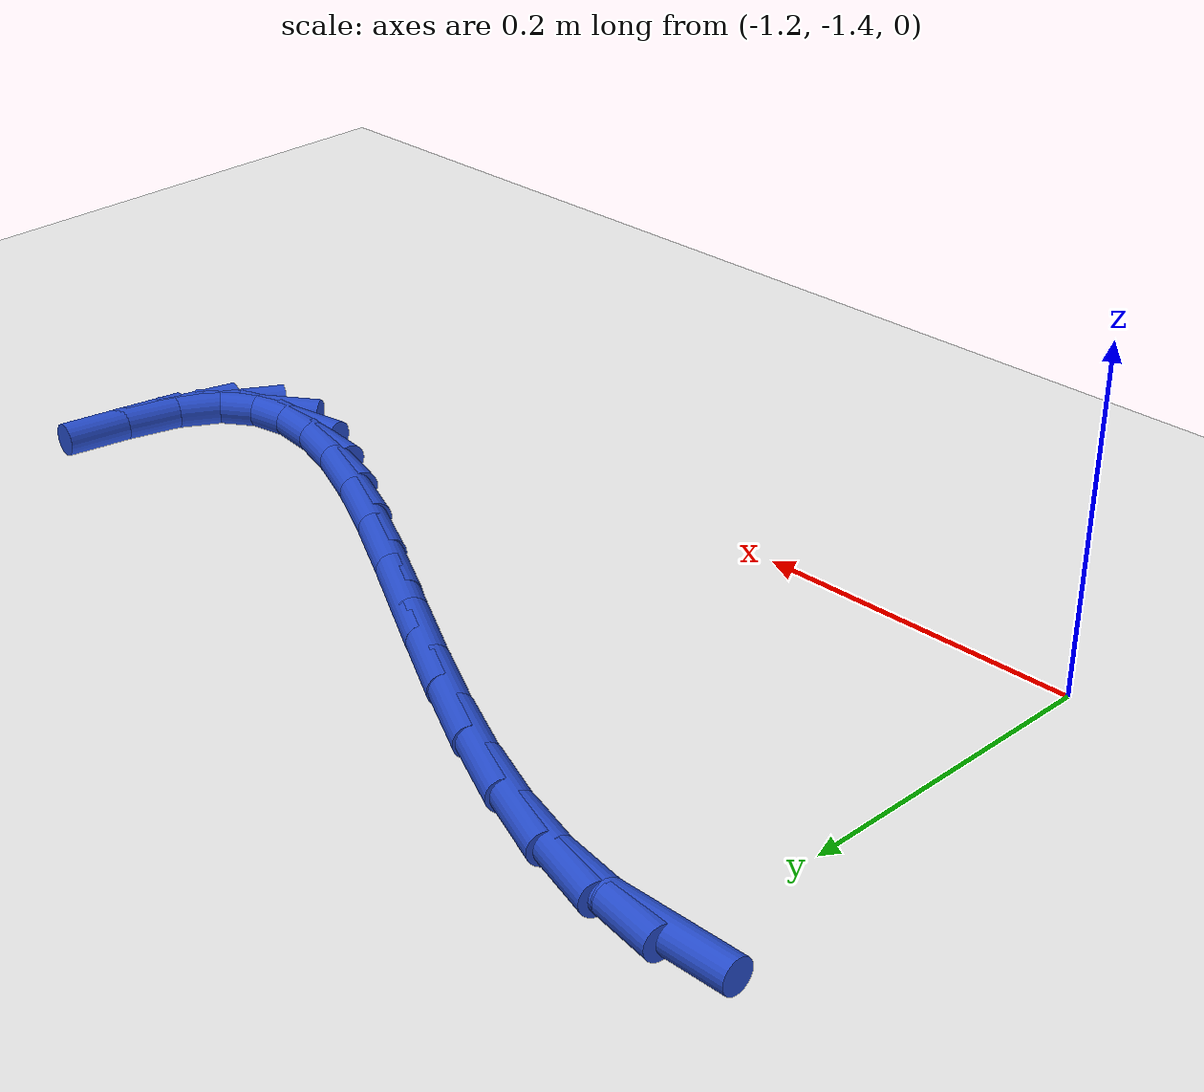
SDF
<sdf version="1.6">
 <world name="default">
  <model name="ground_plane">
   <static>1</static>
   <link name="link">
    <collision name="collision">
     <geometry><plane><normal>0 0 1</normal><size>100 100</size></plane></geometry>
     <surface><friction><ode><mu>100</mu><mu2>50</mu2></ode></friction></surface>
    </collision>
    <visual name="visual">
     <cast_shadows>0</cast_shadows>
     <geometry><plane><normal>0 0 1</normal><size>100 100</size></plane></geometry>
     <material>
      <script><uri>file://media/materials/scripts/gazebo.material</uri><name>Gazebo/WhiteGlow</name></script>
     </material>
    </visual>
   </link>
  </model>
  <model name="line">
   <link name="link_166">
    <pose>-1.2010693783709268 -1.0969151744405807 0.01 0 1.57 -0.009490670696101336</pose>
    <collision name="collision">
     <geometry><cylinder><radius>0.01</radius><length>0.08</length></cylinder></geometry>
    </collision>
    <visual name="visual">
     <material>
      <script><name>Gazebo/Blue</name><uri>file://media/materials/scripts/gazebo.material</uri></script>
     </material>
     <geometry><cylinder><radius>0.01</radius><length>0.08</length></cylinder></geometry>
    </visual>
   </link>
   <link name="link_167">
    <pose>-1.1627790071372486 -1.0972785866560455 0.01 0 1.57 -0.18726349912469764</pose>
    <collision name="collision">
     <geometry><cylinder><radius>0.01</radius><length>0.08</length></cylinder></geometry>
    </collision>
    <visual name="visual">
     <material>
      <script><name>Gazebo/Blue</name><uri>file://media/materials/scripts/gazebo.material</uri></script>
     </material>
     <geometry><cylinder><radius>0.01</radius><length>0.08</length></cylinder></geometry>
    </visual>
   </link>
   <link name="link_168">
    <pose>-1.1222038332906543 -1.1049669169723528 0.01 0 1.57 -0.31391302983705965</pose>
    <collision name="collision">
     <geometry><cylinder><radius>0.01</radius><length>0.08</length></cylinder></geometry>
    </collision>
    <visual name="visual">
     <material>
      <script><name>Gazebo/Blue</name><uri>file://media/materials/scripts/gazebo.material</uri></script>
     </material>
     <geometry><cylinder><radius>0.01</radius><length>0.08</length></cylinder></geometry>
    </visual>
   </link>
   <link name="link_169">
    <pose>-1.07990172873863 -1.118700188897642 0.01 0 1.57 -0.4023185592246144</pose>
    <collision name="collision">
     <geometry><cylinder><radius>0.01</radius><length>0.08</length></cylinder></geometry>
    </collision>
    <visual name="visual">
     <material>
      <script><name>Gazebo/Blue</name><uri>file://media/materials/scripts/gazebo.material</uri></script>
     </material>
     <geometry><cylinder><radius>0.01</radius><length>0.08</length></cylinder></geometry>
    </visual>
   </link>
   <link name="link_170">
    <pose>-1.036430565388667 -1.1371984259400514 0.01 0 1.57 -0.46259539797552635</pose>
    <collision name="collision">
     <geometry><cylinder><radius>0.01</radius><length>0.08</length></cylinder></geometry>
    </collision>
    <visual name="visual">
     <material>
      <script><name>Gazebo/Blue</name><uri>file://media/materials/scripts/gazebo.material</uri></script>
     </material>
     <geometry><cylinder><radius>0.01</radius><length>0.08</length></cylinder></geometry>
    </visual>
   </link>
   <link name="link_171">
    <pose>-0.9923482151482521 -1.15918165160772 0.01 0 1.57 -0.5013393944980971</pose>
    <collision name="collision">
     <geometry><cylinder><radius>0.01</radius><length>0.08</length></cylinder></geometry>
    </collision>
    <visual name="visual">
     <material>
      <script><name>Gazebo/Blue</name><uri>file://media/materials/scripts/gazebo.material</uri></script>
     </material>
     <geometry><cylinder><radius>0.01</radius><length>0.08</length></cylinder></geometry>
    </visual>
   </link>
   <link name="link_172">
    <pose>-0.9482125499248737 -1.1833698894087863 0.01 0 1.57 -0.5222714354342147</pose>
    <collision name="collision">
     <geometry><cylinder><radius>0.01</radius><length>0.08</length></cylinder></geometry>
    </collision>
    <visual name="visual">
     <material>
      <script><name>Gazebo/Blue</name><uri>file://media/materials/scripts/gazebo.material</uri></script>
     </material>
     <geometry><cylinder><radius>0.01</radius><length>0.08</length></cylinder></geometry>
    </visual>
   </link>
   <link name="link_173">
    <pose>-0.9045814416260195 -1.2084831628513906 0.01 0 1.57 -0.526787030130319</pose>
    <collision name="collision">
     <geometry><cylinder><radius>0.01</radius><length>0.08</length></cylinder></geometry>
    </collision>
    <visual name="visual">
     <material>
      <script><name>Gazebo/Blue</name><uri>file://media/materials/scripts/gazebo.material</uri></script>
     </material>
     <geometry><cylinder><radius>0.01</radius><length>0.08</length></cylinder></geometry>
    </visual>
   </link>
   <link name="link_174">
    <pose>-0.8620127621591795 -1.2332414954436701 0.01 0 1.57 -0.5140566205888195</pose>
    <collision name="collision">
     <geometry><cylinder><radius>0.01</radius><length>0.08</length></cylinder></geometry>
    </collision>
    <visual name="visual">
     <material>
      <script><name>Gazebo/Blue</name><uri>file://media/materials/scripts/gazebo.material</uri></script>
     </material>
     <geometry><cylinder><radius>0.01</radius><length>0.08</length></cylinder></geometry>
    </visual>
   </link>
   <link name="link_175">
    <pose>-0.8210643834318411 -1.2563649106937642 0.01 0 1.57 -0.4804936338531796</pose>
    <collision name="collision">
     <geometry><cylinder><radius>0.01</radius><length>0.08</length></cylinder></geometry>
    </collision>
    <visual name="visual">
     <material>
      <script><name>Gazebo/Blue</name><uri>file://media/materials/scripts/gazebo.material</uri></script>
     </material>
     <geometry><cylinder><radius>0.01</radius><length>0.08</length></cylinder></geometry>
    </visual>
   </link>
   <link name="link_176">
    <pose>-0.7822941773514926 -1.2765734321098121 0.01 0 1.57 -0.4181888310233834</pose>
    <collision name="collision">
     <geometry><cylinder><radius>0.01</radius><length>0.08</length></cylinder></geometry>
    </collision>
    <visual name="visual">
     <material>
      <script><name>Gazebo/Blue</name><uri>file://media/materials/scripts/gazebo.material</uri></script>
     </material>
     <geometry><cylinder><radius>0.01</radius><length>0.08</length></cylinder></geometry>
    </visual>
   </link>
   <link name="link_177">
    <pose>-0.7462600158256226 -1.2925870831999529 0.01 0 1.57 -0.31141773894019636</pose>
    <collision name="collision">
     <geometry><cylinder><radius>0.01</radius><length>0.08</length></cylinder></geometry>
    </collision>
    <visual name="visual">
     <material>
      <script><name>Gazebo/Blue</name><uri>file://media/materials/scripts/gazebo.material</uri></script>
     </material>
     <geometry><cylinder><radius>0.01</radius><length>0.08</length></cylinder></geometry>
    </visual>
   </link>
   <link name="link_178">
    <pose>-0.7135197707617182 -1.3031258874723246 0.01 0 1.57 -0.13024441251550584</pose>
    <collision name="collision">
     <geometry><cylinder><radius>0.01</radius><length>0.08</length></cylinder></geometry>
    </collision>
    <visual name="visual">
     <material>
      <script><name>Gazebo/Blue</name><uri>file://media/materials/scripts/gazebo.material</uri></script>
     </material>
     <geometry><cylinder><radius>0.01</radius><length>0.08</length></cylinder></geometry>
    </visual>
   </link>
   <link name="link_179">
    <pose>-0.6846313140672702 -1.3069098684350675 0.01 0 1.57 0.17193848962431255</pose>
    <collision name="collision">
     <geometry><cylinder><radius>0.01</radius><length>0.08</length></cylinder></geometry>
    </collision>
    <visual name="visual">
     <material>
      <script><name>Gazebo/Blue</name><uri>file://media/materials/scripts/gazebo.material</uri></script>
     </material>
     <geometry><cylinder><radius>0.01</radius><length>0.08</length></cylinder></geometry>
    </visual>
   </link>
   <link name="link_180">
    <pose>-0.6601525176497651 -1.3026590495963188 0.01 0 1.57 0.6075443549732384</pose>
    <collision name="collision">
     <geometry><cylinder><radius>0.01</radius><length>0.08</length></cylinder></geometry>
    </collision>
    <visual name="visual">
     <material>
      <script><name>Gazebo/Blue</name><uri>file://media/materials/scripts/gazebo.material</uri></script>
     </material>
     <geometry><cylinder><radius>0.01</radius><length>0.08</length></cylinder></geometry>
    </visual>
   </link>
   <link name="link_181">
    <pose>-0.6406412534166918 -1.2890934544642185 0.01 0 1.57 1.0453030661426825</pose>
    <collision name="collision">
     <geometry><cylinder><radius>0.01</radius><length>0.08</length></cylinder></geometry>
    </collision>
    <visual name="visual">
     <material>
      <script><name>Gazebo/Blue</name><uri>file://media/materials/scripts/gazebo.material</uri></script>
     </material>
     <geometry><cylinder><radius>0.01</radius><length>0.08</length></cylinder></geometry>
    </visual>
   </link>
   <link name="link_182">
    <pose>-0.6266430633355252 -1.2649536086650606 0.01 0 1.57 1.3088672434613724</pose>
    <collision name="collision">
     <geometry><cylinder><radius>0.01</radius><length>0.08</length></cylinder></geometry>
    </collision>
    <visual name="visual">
     <material>
      <script><name>Gazebo/Blue</name><uri>file://media/materials/scripts/gazebo.material</uri></script>
     </material>
     <geometry><cylinder><radius>0.01</radius><length>0.08</length></cylinder></geometry>
    </visual>
   </link>
   <link name="link_183">
    <pose>-0.6175245256081623 -1.2309404086297573 0.01 0 1.57 1.3957109387421704</pose>
    <collision name="collision">
     <geometry><cylinder><radius>0.01</radius><length>0.08</length></cylinder></geometry>
    </collision>
    <visual name="visual">
     <material>
      <script><name>Gazebo/Blue</name><uri>file://media/materials/scripts/gazebo.material</uri></script>
     </material>
     <geometry><cylinder><radius>0.01</radius><length>0.08</length></cylinder></geometry>
    </visual>
   </link>
  </model>
 </world>
</sdf>
